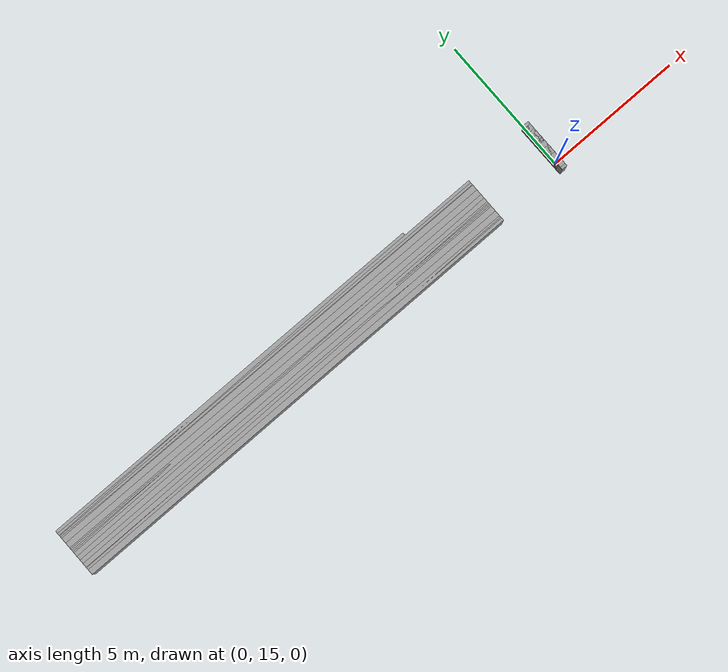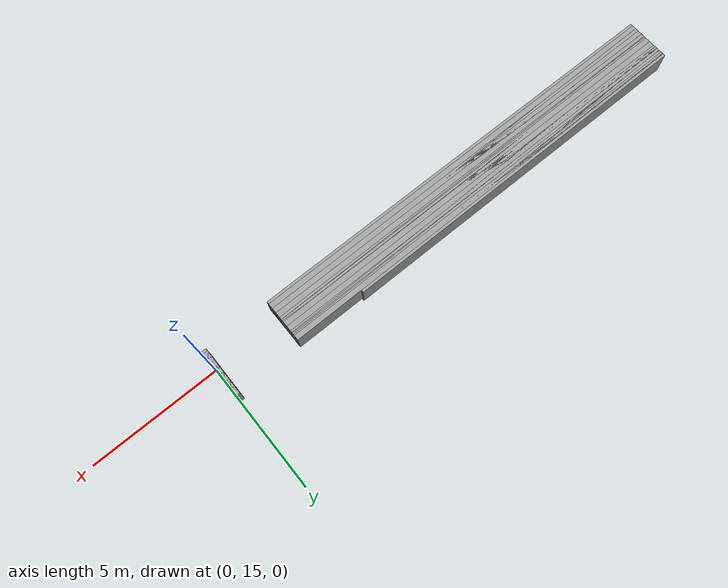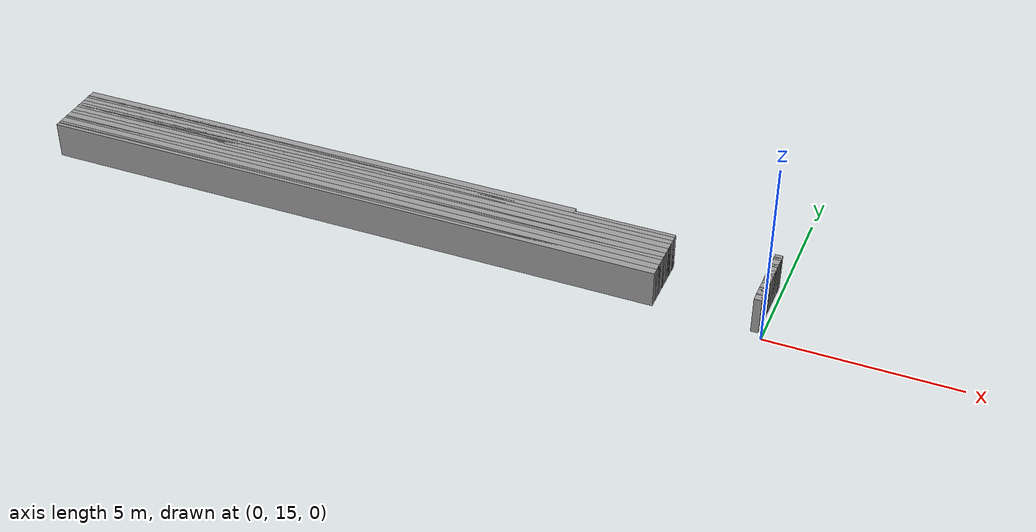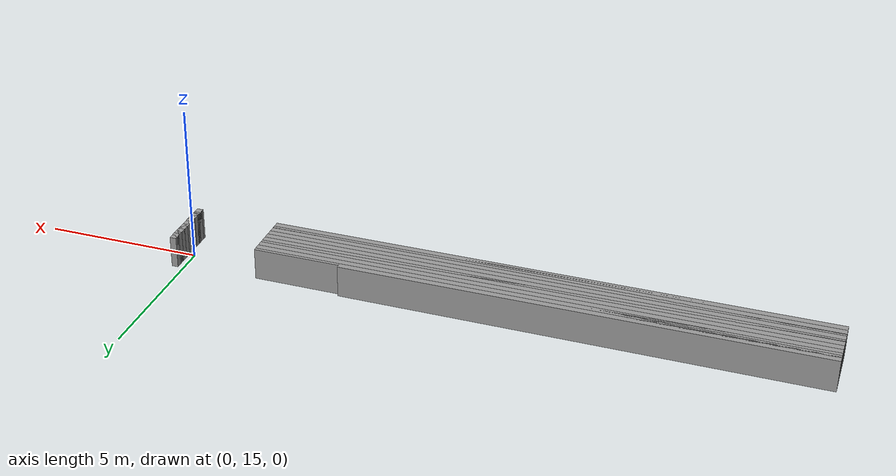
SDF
<sdf version="1.6">
 <world name="GridMap">
  <model name="GridMap">
   <link name="Wall_(1.0,147.0)">
    <collision name="Wall_(1.0,147.0)_Collision">
     <geometry><box><size>0.2 0.2 1.0</size></box></geometry>
     <pose>-0.1 14.7 0.5 0 -0 0</pose>
    </collision>
    <visual name="Wall_(1.0,147.0)_Visual">
     <geometry><box><size>0.2 0.2 1.0</size></box></geometry>
     <pose>-0.1 14.7 0.5 0 -0 0</pose>
     <material>
      <script><uri>file://media/materials/scripts/gazebo.material</uri><name>Gazebo/Grey</name></script>
      <ambient>1 1 1 1</ambient>
     </material>
     <meta><layer>0</layer></meta>
    </visual>
    <pose>0 0 0.5 0 -0 0</pose>
   </link>
   <link name="Wall_(113.0,147.0)">
    <collision name="Wall_(113.0,147.0)_Collision">
     <geometry><box><size>17.2 0.2 1.0</size></box></geometry>
     <pose>-11.3 14.7 0.5 0 -0 0</pose>
    </collision>
    <visual name="Wall_(113.0,147.0)_Visual">
     <geometry><box><size>17.2 0.2 1.0</size></box></geometry>
     <pose>-11.3 14.7 0.5 0 -0 0</pose>
     <material>
      <script><uri>file://media/materials/scripts/gazebo.material</uri><name>Gazebo/Grey</name></script>
      <ambient>1 1 1 1</ambient>
     </material>
     <meta><layer>0</layer></meta>
    </visual>
    <pose>0 0 0.5 0 -0 0</pose>
   </link>
   <link name="Wall_(1.0,148.0)">
    <collision name="Wall_(1.0,148.0)_Collision">
     <geometry><box><size>0.2 0.2 1.0</size></box></geometry>
     <pose>-0.1 14.8 0.5 0 -0 0</pose>
    </collision>
    <visual name="Wall_(1.0,148.0)_Visual">
     <geometry><box><size>0.2 0.2 1.0</size></box></geometry>
     <pose>-0.1 14.8 0.5 0 -0 0</pose>
     <material>
      <script><uri>file://media/materials/scripts/gazebo.material</uri><name>Gazebo/Grey</name></script>
      <ambient>1 1 1 1</ambient>
     </material>
     <meta><layer>0</layer></meta>
    </visual>
    <pose>0 0 0.5 0 -0 0</pose>
   </link>
   <link name="Wall_(113.0,148.0)">
    <collision name="Wall_(113.0,148.0)_Collision">
     <geometry><box><size>17.2 0.2 1.0</size></box></geometry>
     <pose>-11.3 14.8 0.5 0 -0 0</pose>
    </collision>
    <visual name="Wall_(113.0,148.0)_Visual">
     <geometry><box><size>17.2 0.2 1.0</size></box></geometry>
     <pose>-11.3 14.8 0.5 0 -0 0</pose>
     <material>
      <script><uri>file://media/materials/scripts/gazebo.material</uri><name>Gazebo/Grey</name></script>
      <ambient>1 1 1 1</ambient>
     </material>
     <meta><layer>0</layer></meta>
    </visual>
    <pose>0 0 0.5 0 -0 0</pose>
   </link>
   <link name="Wall_(1.0,149.0)">
    <collision name="Wall_(1.0,149.0)_Collision">
     <geometry><box><size>0.2 0.2 1.0</size></box></geometry>
     <pose>-0.1 14.9 0.5 0 -0 0</pose>
    </collision>
    <visual name="Wall_(1.0,149.0)_Visual">
     <geometry><box><size>0.2 0.2 1.0</size></box></geometry>
     <pose>-0.1 14.9 0.5 0 -0 0</pose>
     <material>
      <script><uri>file://media/materials/scripts/gazebo.material</uri><name>Gazebo/Grey</name></script>
      <ambient>1 1 1 1</ambient>
     </material>
     <meta><layer>0</layer></meta>
    </visual>
    <pose>0 0 0.5 0 -0 0</pose>
   </link>
   <link name="Wall_(113.0,149.0)">
    <collision name="Wall_(113.0,149.0)_Collision">
     <geometry><box><size>17.2 0.2 1.0</size></box></geometry>
     <pose>-11.3 14.9 0.5 0 -0 0</pose>
    </collision>
    <visual name="Wall_(113.0,149.0)_Visual">
     <geometry><box><size>17.2 0.2 1.0</size></box></geometry>
     <pose>-11.3 14.9 0.5 0 -0 0</pose>
     <material>
      <script><uri>file://media/materials/scripts/gazebo.material</uri><name>Gazebo/Grey</name></script>
      <ambient>1 1 1 1</ambient>
     </material>
     <meta><layer>0</layer></meta>
    </visual>
    <pose>0 0 0.5 0 -0 0</pose>
   </link>
   <link name="Wall_(1.0,150.0)">
    <collision name="Wall_(1.0,150.0)_Collision">
     <geometry><box><size>0.2 0.2 1.0</size></box></geometry>
     <pose>-0.1 15.0 0.5 0 -0 0</pose>
    </collision>
    <visual name="Wall_(1.0,150.0)_Visual">
     <geometry><box><size>0.2 0.2 1.0</size></box></geometry>
     <pose>-0.1 15.0 0.5 0 -0 0</pose>
     <material>
      <script><uri>file://media/materials/scripts/gazebo.material</uri><name>Gazebo/Grey</name></script>
      <ambient>1 1 1 1</ambient>
     </material>
     <meta><layer>0</layer></meta>
    </visual>
    <pose>0 0 0.5 0 -0 0</pose>
   </link>
   <link name="Wall_(113.0,150.0)">
    <collision name="Wall_(113.0,150.0)_Collision">
     <geometry><box><size>17.2 0.2 1.0</size></box></geometry>
     <pose>-11.3 15.0 0.5 0 -0 0</pose>
    </collision>
    <visual name="Wall_(113.0,150.0)_Visual">
     <geometry><box><size>17.2 0.2 1.0</size></box></geometry>
     <pose>-11.3 15.0 0.5 0 -0 0</pose>
     <material>
      <script><uri>file://media/materials/scripts/gazebo.material</uri><name>Gazebo/Grey</name></script>
      <ambient>1 1 1 1</ambient>
     </material>
     <meta><layer>0</layer></meta>
    </visual>
    <pose>0 0 0.5 0 -0 0</pose>
   </link>
   <link name="Wall_(1.0,151.0)">
    <collision name="Wall_(1.0,151.0)_Collision">
     <geometry><box><size>0.2 0.2 1.0</size></box></geometry>
     <pose>-0.1 15.1 0.5 0 -0 0</pose>
    </collision>
    <visual name="Wall_(1.0,151.0)_Visual">
     <geometry><box><size>0.2 0.2 1.0</size></box></geometry>
     <pose>-0.1 15.1 0.5 0 -0 0</pose>
     <material>
      <script><uri>file://media/materials/scripts/gazebo.material</uri><name>Gazebo/Grey</name></script>
      <ambient>1 1 1 1</ambient>
     </material>
     <meta><layer>0</layer></meta>
    </visual>
    <pose>0 0 0.5 0 -0 0</pose>
   </link>
   <link name="Wall_(113.0,151.0)">
    <collision name="Wall_(113.0,151.0)_Collision">
     <geometry><box><size>17.2 0.2 1.0</size></box></geometry>
     <pose>-11.3 15.1 0.5 0 -0 0</pose>
    </collision>
    <visual name="Wall_(113.0,151.0)_Visual">
     <geometry><box><size>17.2 0.2 1.0</size></box></geometry>
     <pose>-11.3 15.1 0.5 0 -0 0</pose>
     <material>
      <script><uri>file://media/materials/scripts/gazebo.material</uri><name>Gazebo/Grey</name></script>
      <ambient>1 1 1 1</ambient>
     </material>
     <meta><layer>0</layer></meta>
    </visual>
    <pose>0 0 0.5 0 -0 0</pose>
   </link>
   <link name="Wall_(1.0,152.0)">
    <collision name="Wall_(1.0,152.0)_Collision">
     <geometry><box><size>0.2 0.2 1.0</size></box></geometry>
     <pose>-0.1 15.2 0.5 0 -0 0</pose>
    </collision>
    <visual name="Wall_(1.0,152.0)_Visual">
     <geometry><box><size>0.2 0.2 1.0</size></box></geometry>
     <pose>-0.1 15.2 0.5 0 -0 0</pose>
     <material>
      <script><uri>file://media/materials/scripts/gazebo.material</uri><name>Gazebo/Grey</name></script>
      <ambient>1 1 1 1</ambient>
     </material>
     <meta><layer>0</layer></meta>
    </visual>
    <pose>0 0 0.5 0 -0 0</pose>
   </link>
   <link name="Wall_(113.0,152.0)">
    <collision name="Wall_(113.0,152.0)_Collision">
     <geometry><box><size>17.2 0.2 1.0</size></box></geometry>
     <pose>-11.3 15.2 0.5 0 -0 0</pose>
    </collision>
    <visual name="Wall_(113.0,152.0)_Visual">
     <geometry><box><size>17.2 0.2 1.0</size></box></geometry>
     <pose>-11.3 15.2 0.5 0 -0 0</pose>
     <material>
      <script><uri>file://media/materials/scripts/gazebo.material</uri><name>Gazebo/Grey</name></script>
      <ambient>1 1 1 1</ambient>
     </material>
     <meta><layer>0</layer></meta>
    </visual>
    <pose>0 0 0.5 0 -0 0</pose>
   </link>
   <link name="Wall_(1.0,153.0)">
    <collision name="Wall_(1.0,153.0)_Collision">
     <geometry><box><size>0.2 0.2 1.0</size></box></geometry>
     <pose>-0.1 15.3 0.5 0 -0 0</pose>
    </collision>
    <visual name="Wall_(1.0,153.0)_Visual">
     <geometry><box><size>0.2 0.2 1.0</size></box></geometry>
     <pose>-0.1 15.3 0.5 0 -0 0</pose>
     <material>
      <script><uri>file://media/materials/scripts/gazebo.material</uri><name>Gazebo/Grey</name></script>
      <ambient>1 1 1 1</ambient>
     </material>
     <meta><layer>0</layer></meta>
    </visual>
    <pose>0 0 0.5 0 -0 0</pose>
   </link>
   <link name="Wall_(113.0,153.0)">
    <collision name="Wall_(113.0,153.0)_Collision">
     <geometry><box><size>17.2 0.2 1.0</size></box></geometry>
     <pose>-11.3 15.3 0.5 0 -0 0</pose>
    </collision>
    <visual name="Wall_(113.0,153.0)_Visual">
     <geometry><box><size>17.2 0.2 1.0</size></box></geometry>
     <pose>-11.3 15.3 0.5 0 -0 0</pose>
     <material>
      <script><uri>file://media/materials/scripts/gazebo.material</uri><name>Gazebo/Grey</name></script>
      <ambient>1 1 1 1</ambient>
     </material>
     <meta><layer>0</layer></meta>
    </visual>
    <pose>0 0 0.5 0 -0 0</pose>
   </link>
   <link name="Wall_(1.0,154.0)">
    <collision name="Wall_(1.0,154.0)_Collision">
     <geometry><box><size>0.2 0.2 1.0</size></box></geometry>
     <pose>-0.1 15.4 0.5 0 -0 0</pose>
    </collision>
    <visual name="Wall_(1.0,154.0)_Visual">
     <geometry><box><size>0.2 0.2 1.0</size></box></geometry>
     <pose>-0.1 15.4 0.5 0 -0 0</pose>
     <material>
      <script><uri>file://media/materials/scripts/gazebo.material</uri><name>Gazebo/Grey</name></script>
      <ambient>1 1 1 1</ambient>
     </material>
     <meta><layer>0</layer></meta>
    </visual>
    <pose>0 0 0.5 0 -0 0</pose>
   </link>
   <link name="Wall_(113.0,154.0)">
    <collision name="Wall_(113.0,154.0)_Collision">
     <geometry><box><size>17.2 0.2 1.0</size></box></geometry>
     <pose>-11.3 15.4 0.5 0 -0 0</pose>
    </collision>
    <visual name="Wall_(113.0,154.0)_Visual">
     <geometry><box><size>17.2 0.2 1.0</size></box></geometry>
     <pose>-11.3 15.4 0.5 0 -0 0</pose>
     <material>
      <script><uri>file://media/materials/scripts/gazebo.material</uri><name>Gazebo/Grey</name></script>
      <ambient>1 1 1 1</ambient>
     </material>
     <meta><layer>0</layer></meta>
    </visual>
    <pose>0 0 0.5 0 -0 0</pose>
   </link>
   <link name="Wall_(1.0,155.0)">
    <collision name="Wall_(1.0,155.0)_Collision">
     <geometry><box><size>0.2 0.2 1.0</size></box></geometry>
     <pose>-0.1 15.5 0.5 0 -0 0</pose>
    </collision>
    <visual name="Wall_(1.0,155.0)_Visual">
     <geometry><box><size>0.2 0.2 1.0</size></box></geometry>
     <pose>-0.1 15.5 0.5 0 -0 0</pose>
     <material>
      <script><uri>file://media/materials/scripts/gazebo.material</uri><name>Gazebo/Grey</name></script>
      <ambient>1 1 1 1</ambient>
     </material>
     <meta><layer>0</layer></meta>
    </visual>
    <pose>0 0 0.5 0 -0 0</pose>
   </link>
   <link name="Wall_(113.0,155.0)">
    <collision name="Wall_(113.0,155.0)_Collision">
     <geometry><box><size>17.2 0.2 1.0</size></box></geometry>
     <pose>-11.3 15.5 0.5 0 -0 0</pose>
    </collision>
    <visual name="Wall_(113.0,155.0)_Visual">
     <geometry><box><size>17.2 0.2 1.0</size></box></geometry>
     <pose>-11.3 15.5 0.5 0 -0 0</pose>
     <material>
      <script><uri>file://media/materials/scripts/gazebo.material</uri><name>Gazebo/Grey</name></script>
      <ambient>1 1 1 1</ambient>
     </material>
     <meta><layer>0</layer></meta>
    </visual>
    <pose>0 0 0.5 0 -0 0</pose>
   </link>
   <link name="Wall_(1.0,156.0)">
    <collision name="Wall_(1.0,156.0)_Collision">
     <geometry><box><size>0.2 0.2 1.0</size></box></geometry>
     <pose>-0.1 15.6 0.5 0 -0 0</pose>
    </collision>
    <visual name="Wall_(1.0,156.0)_Visual">
     <geometry><box><size>0.2 0.2 1.0</size></box></geometry>
     <pose>-0.1 15.6 0.5 0 -0 0</pose>
     <material>
      <script><uri>file://media/materials/scripts/gazebo.material</uri><name>Gazebo/Grey</name></script>
      <ambient>1 1 1 1</ambient>
     </material>
     <meta><layer>0</layer></meta>
    </visual>
    <pose>0 0 0.5 0 -0 0</pose>
   </link>
   <link name="Wall_(113.0,156.0)">
    <collision name="Wall_(113.0,156.0)_Collision">
     <geometry><box><size>17.2 0.2 1.0</size></box></geometry>
     <pose>-11.3 15.6 0.5 0 -0 0</pose>
    </collision>
    <visual name="Wall_(113.0,156.0)_Visual">
     <geometry><box><size>17.2 0.2 1.0</size></box></geometry>
     <pose>-11.3 15.6 0.5 0 -0 0</pose>
     <material>
      <script><uri>file://media/materials/scripts/gazebo.material</uri><name>Gazebo/Grey</name></script>
      <ambient>1 1 1 1</ambient>
     </material>
     <meta><layer>0</layer></meta>
    </visual>
    <pose>0 0 0.5 0 -0 0</pose>
   </link>
   <link name="Wall_(1.0,157.0)">
    <collision name="Wall_(1.0,157.0)_Collision">
     <geometry><box><size>0.2 0.2 1.0</size></box></geometry>
     <pose>-0.1 15.7 0.5 0 -0 0</pose>
    </collision>
    <visual name="Wall_(1.0,157.0)_Visual">
     <geometry><box><size>0.2 0.2 1.0</size></box></geometry>
     <pose>-0.1 15.7 0.5 0 -0 0</pose>
     <material>
      <script><uri>file://media/materials/scripts/gazebo.material</uri><name>Gazebo/Grey</name></script>
      <ambient>1 1 1 1</ambient>
     </material>
     <meta><layer>0</layer></meta>
    </visual>
    <pose>0 0 0.5 0 -0 0</pose>
   </link>
   <link name="Wall_(113.0,157.0)">
    <collision name="Wall_(113.0,157.0)_Collision">
     <geometry><box><size>17.2 0.2 1.0</size></box></geometry>
     <pose>-11.3 15.7 0.5 0 -0 0</pose>
    </collision>
    <visual name="Wall_(113.0,157.0)_Visual">
     <geometry><box><size>17.2 0.2 1.0</size></box></geometry>
     <pose>-11.3 15.7 0.5 0 -0 0</pose>
     <material>
      <script><uri>file://media/materials/scripts/gazebo.material</uri><name>Gazebo/Grey</name></script>
      <ambient>1 1 1 1</ambient>
     </material>
     <meta><layer>0</layer></meta>
    </visual>
    <pose>0 0 0.5 0 -0 0</pose>
   </link>
   <link name="Wall_(1.0,158.0)">
    <collision name="Wall_(1.0,158.0)_Collision">
     <geometry><box><size>0.2 0.2 1.0</size></box></geometry>
     <pose>-0.1 15.8 0.5 0 -0 0</pose>
    </collision>
    <visual name="Wall_(1.0,158.0)_Visual">
     <geometry><box><size>0.2 0.2 1.0</size></box></geometry>
     <pose>-0.1 15.8 0.5 0 -0 0</pose>
     <material>
      <script><uri>file://media/materials/scripts/gazebo.material</uri><name>Gazebo/Grey</name></script>
      <ambient>1 1 1 1</ambient>
     </material>
     <meta><layer>0</layer></meta>
    </visual>
    <pose>0 0 0.5 0 -0 0</pose>
   </link>
   <link name="Wall_(113.0,158.0)">
    <collision name="Wall_(113.0,158.0)_Collision">
     <geometry><box><size>17.2 0.2 1.0</size></box></geometry>
     <pose>-11.3 15.8 0.5 0 -0 0</pose>
    </collision>
    <visual name="Wall_(113.0,158.0)_Visual">
     <geometry><box><size>17.2 0.2 1.0</size></box></geometry>
     <pose>-11.3 15.8 0.5 0 -0 0</pose>
     <material>
      <script><uri>file://media/materials/scripts/gazebo.material</uri><name>Gazebo/Grey</name></script>
      <ambient>1 1 1 1</ambient>
     </material>
     <meta><layer>0</layer></meta>
    </visual>
    <pose>0 0 0.5 0 -0 0</pose>
   </link>
   <link name="Wall_(1.0,159.0)">
    <collision name="Wall_(1.0,159.0)_Collision">
     <geometry><box><size>0.2 0.2 1.0</size></box></geometry>
     <pose>-0.1 15.9 0.5 0 -0 0</pose>
    </collision>
    <visual name="Wall_(1.0,159.0)_Visual">
     <geometry><box><size>0.2 0.2 1.0</size></box></geometry>
     <pose>-0.1 15.9 0.5 0 -0 0</pose>
     <material>
      <script><uri>file://media/materials/scripts/gazebo.material</uri><name>Gazebo/Grey</name></script>
      <ambient>1 1 1 1</ambient>
     </material>
     <meta><layer>0</layer></meta>
    </visual>
    <pose>0 0 0.5 0 -0 0</pose>
   </link>
   <link name="Wall_(113.0,159.0)">
    <collision name="Wall_(113.0,159.0)_Collision">
     <geometry><box><size>17.2 0.2 1.0</size></box></geometry>
     <pose>-11.3 15.9 0.5 0 -0 0</pose>
    </collision>
    <visual name="Wall_(113.0,159.0)_Visual">
     <geometry><box><size>17.2 0.2 1.0</size></box></geometry>
     <pose>-11.3 15.9 0.5 0 -0 0</pose>
     <material>
      <script><uri>file://media/materials/scripts/gazebo.material</uri><name>Gazebo/Grey</name></script>
      <ambient>1 1 1 1</ambient>
     </material>
     <meta><layer>0</layer></meta>
    </visual>
    <pose>0 0 0.5 0 -0 0</pose>
   </link>
   <link name="Wall_(1.0,160.0)">
    <collision name="Wall_(1.0,160.0)_Collision">
     <geometry><box><size>0.2 0.2 1.0</size></box></geometry>
     <pose>-0.1 16.0 0.5 0 -0 0</pose>
    </collision>
    <visual name="Wall_(1.0,160.0)_Visual">
     <geometry><box><size>0.2 0.2 1.0</size></box></geometry>
     <pose>-0.1 16.0 0.5 0 -0 0</pose>
     <material>
      <script><uri>file://media/materials/scripts/gazebo.material</uri><name>Gazebo/Grey</name></script>
      <ambient>1 1 1 1</ambient>
     </material>
     <meta><layer>0</layer></meta>
    </visual>
    <pose>0 0 0.5 0 -0 0</pose>
   </link>
   <link name="Wall_(113.0,160.0)">
    <collision name="Wall_(113.0,160.0)_Collision">
     <geometry><box><size>17.2 0.2 1.0</size></box></geometry>
     <pose>-11.3 16.0 0.5 0 -0 0</pose>
    </collision>
    <visual name="Wall_(113.0,160.0)_Visual">
     <geometry><box><size>17.2 0.2 1.0</size></box></geometry>
     <pose>-11.3 16.0 0.5 0 -0 0</pose>
     <material>
      <script><uri>file://media/materials/scripts/gazebo.material</uri><name>Gazebo/Grey</name></script>
      <ambient>1 1 1 1</ambient>
     </material>
     <meta><layer>0</layer></meta>
    </visual>
    <pose>0 0 0.5 0 -0 0</pose>
   </link>
   <link name="Wall_(1.0,161.0)">
    <collision name="Wall_(1.0,161.0)_Collision">
     <geometry><box><size>0.2 0.2 1.0</size></box></geometry>
     <pose>-0.1 16.1 0.5 0 -0 0</pose>
    </collision>
    <visual name="Wall_(1.0,161.0)_Visual">
     <geometry><box><size>0.2 0.2 1.0</size></box></geometry>
     <pose>-0.1 16.1 0.5 0 -0 0</pose>
     <material>
      <script><uri>file://media/materials/scripts/gazebo.material</uri><name>Gazebo/Grey</name></script>
      <ambient>1 1 1 1</ambient>
     </material>
     <meta><layer>0</layer></meta>
    </visual>
    <pose>0 0 0.5 0 -0 0</pose>
   </link>
   <link name="Wall_(113.0,161.0)">
    <collision name="Wall_(113.0,161.0)_Collision">
     <geometry><box><size>17.2 0.2 1.0</size></box></geometry>
     <pose>-11.3 16.1 0.5 0 -0 0</pose>
    </collision>
    <visual name="Wall_(113.0,161.0)_Visual">
     <geometry><box><size>17.2 0.2 1.0</size></box></geometry>
     <pose>-11.3 16.1 0.5 0 -0 0</pose>
     <material>
      <script><uri>file://media/materials/scripts/gazebo.material</uri><name>Gazebo/Grey</name></script>
      <ambient>1 1 1 1</ambient>
     </material>
     <meta><layer>0</layer></meta>
    </visual>
    <pose>0 0 0.5 0 -0 0</pose>
   </link>
   <link name="Wall_(1.0,162.0)">
    <collision name="Wall_(1.0,162.0)_Collision">
     <geometry><box><size>0.2 0.2 1.0</size></box></geometry>
     <pose>-0.1 16.2 0.5 0 -0 0</pose>
    </collision>
    <visual name="Wall_(1.0,162.0)_Visual">
     <geometry><box><size>0.2 0.2 1.0</size></box></geometry>
     <pose>-0.1 16.2 0.5 0 -0 0</pose>
     <material>
      <script><uri>file://media/materials/scripts/gazebo.material</uri><name>Gazebo/Grey</name></script>
      <ambient>1 1 1 1</ambient>
     </material>
     <meta><layer>0</layer></meta>
    </visual>
    <pose>0 0 0.5 0 -0 0</pose>
   </link>
   <link name="Wall_(113.0,162.0)">
    <collision name="Wall_(113.0,162.0)_Collision">
     <geometry><box><size>17.2 0.2 1.0</size></box></geometry>
     <pose>-11.3 16.2 0.5 0 -0 0</pose>
    </collision>
    <visual name="Wall_(113.0,162.0)_Visual">
     <geometry><box><size>17.2 0.2 1.0</size></box></geometry>
     <pose>-11.3 16.2 0.5 0 -0 0</pose>
     <material>
      <script><uri>file://media/materials/scripts/gazebo.material</uri><name>Gazebo/Grey</name></script>
      <ambient>1 1 1 1</ambient>
     </material>
     <meta><layer>0</layer></meta>
    </visual>
    <pose>0 0 0.5 0 -0 0</pose>
   </link>
   <link name="Wall_(1.0,163.0)">
    <collision name="Wall_(1.0,163.0)_Collision">
     <geometry><box><size>0.2 0.2 1.0</size></box></geometry>
     <pose>-0.1 16.3 0.5 0 -0 0</pose>
    </collision>
    <visual name="Wall_(1.0,163.0)_Visual">
     <geometry><box><size>0.2 0.2 1.0</size></box></geometry>
     <pose>-0.1 16.3 0.5 0 -0 0</pose>
     <material>
      <script><uri>file://media/materials/scripts/gazebo.material</uri><name>Gazebo/Grey</name></script>
      <ambient>1 1 1 1</ambient>
     </material>
     <meta><layer>0</layer></meta>
    </visual>
    <pose>0 0 0.5 0 -0 0</pose>
   </link>
   <link name="Wall_(126.5,163.0)">
    <collision name="Wall_(126.5,163.0)_Collision">
     <geometry><box><size>14.5 0.2 1.0</size></box></geometry>
     <pose>-12.65 16.3 0.5 0 -0 0</pose>
    </collision>
    <visual name="Wall_(126.5,163.0)_Visual">
     <geometry><box><size>14.5 0.2 1.0</size></box></geometry>
     <pose>-12.65 16.3 0.5 0 -0 0</pose>
     <material>
      <script><uri>file://media/materials/scripts/gazebo.material</uri><name>Gazebo/Grey</name></script>
      <ambient>1 1 1 1</ambient>
     </material>
     <meta><layer>0</layer></meta>
    </visual>
    <pose>0 0 0.5 0 -0 0</pose>
   </link>
   <link name="Wall_(1.0,164.0)">
    <collision name="Wall_(1.0,164.0)_Collision">
     <geometry><box><size>0.2 0.2 1.0</size></box></geometry>
     <pose>-0.1 16.4 0.5 0 -0 0</pose>
    </collision>
    <visual name="Wall_(1.0,164.0)_Visual">
     <geometry><box><size>0.2 0.2 1.0</size></box></geometry>
     <pose>-0.1 16.4 0.5 0 -0 0</pose>
     <material>
      <script><uri>file://media/materials/scripts/gazebo.material</uri><name>Gazebo/Grey</name></script>
      <ambient>1 1 1 1</ambient>
     </material>
     <meta><layer>0</layer></meta>
    </visual>
    <pose>0 0 0.5 0 -0 0</pose>
   </link>
   <static>1</static>
  </model>
 </world>
</sdf>
